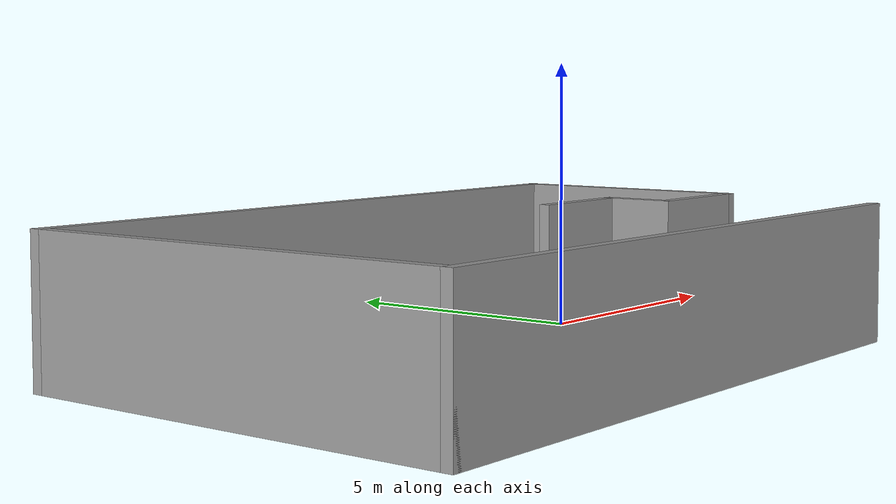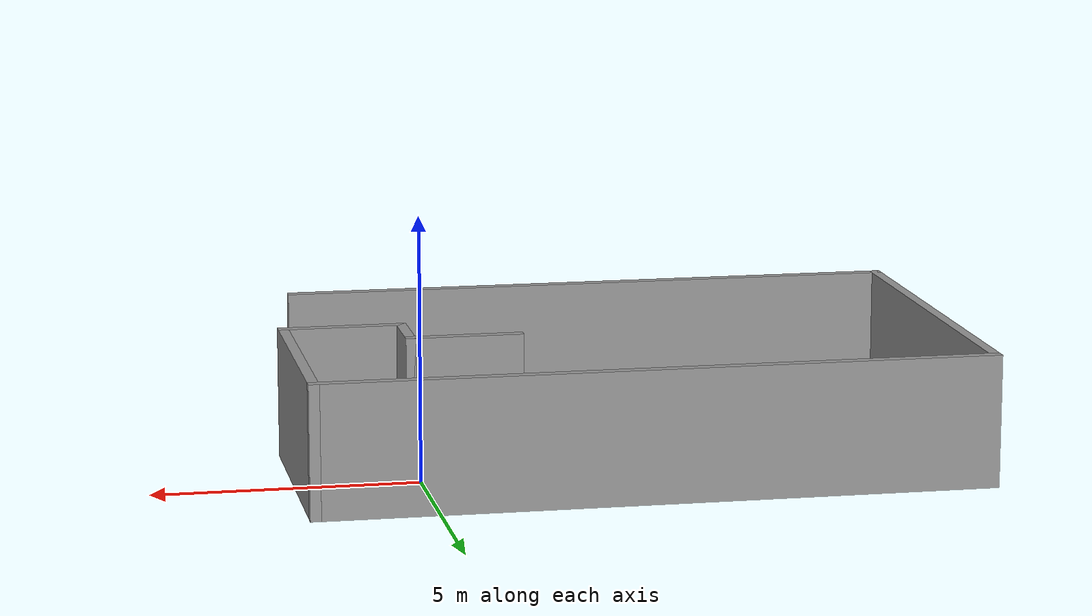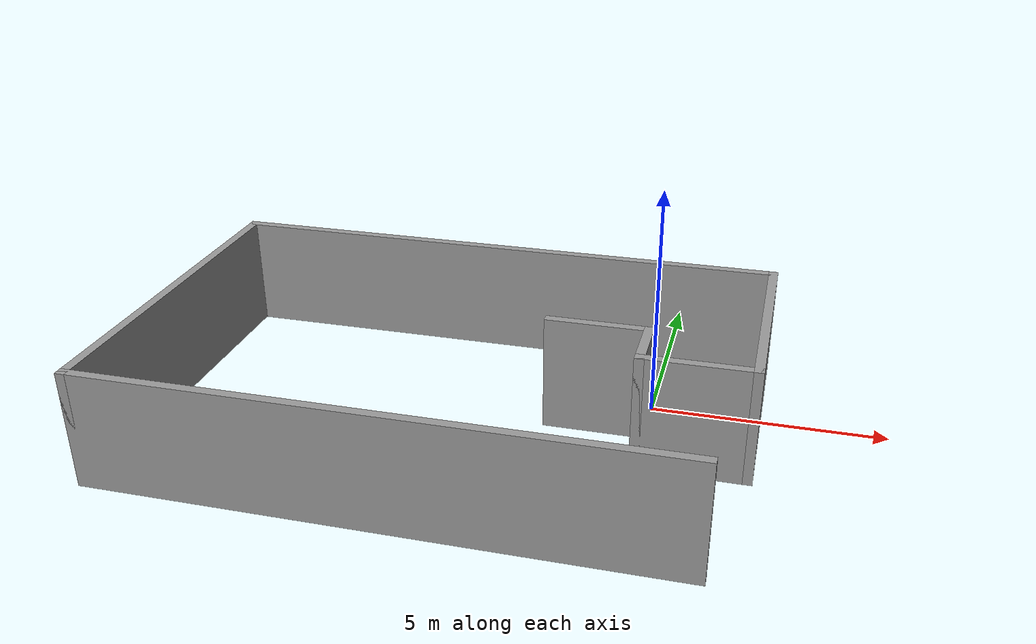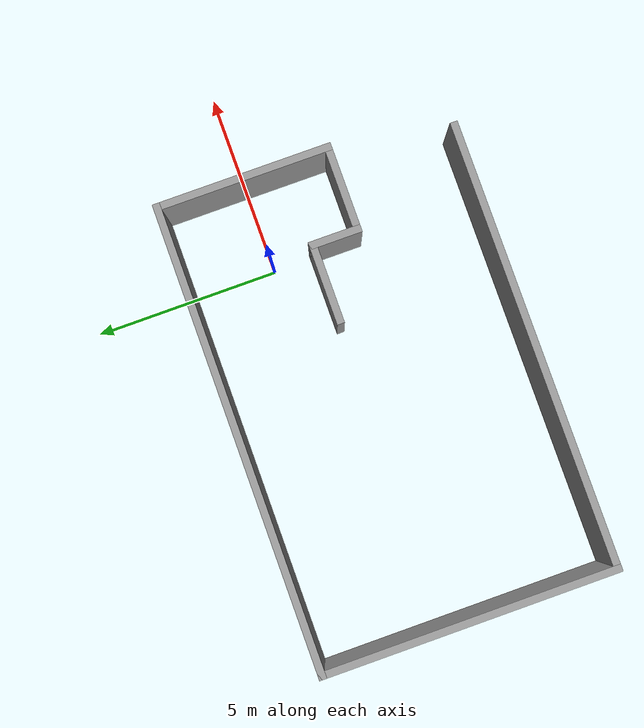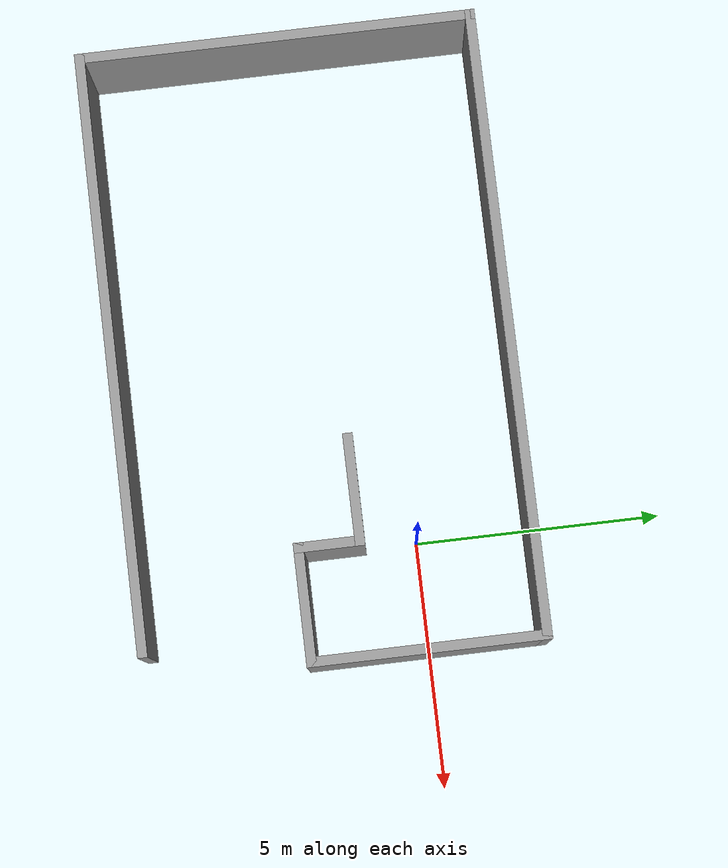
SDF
<sdf version='1.4'>
  <model name='editor'>
    <link name='Wall_0'>
      <collision name='Wall_0_Collision'>
        <geometry>
          <box>
            <size>2.240000 0.200000 2.500000</size>
          </box>
        </geometry>
        <pose>0.000000 0.000000 1.250000 0.000000 0.000000 0.000000</pose>
      </collision>
      <visual name='Wall_0_Visual'>
        <pose>0.000000 0.000000 1.250000 0.000000 0.000000 0.000000</pose>
        <geometry>
          <box>
            <size>2.240000 0.200000 2.500000</size>
          </box>
        </geometry>
        <material>
          <script>
            <uri>file://media/materials/scripts/gazebo.material</uri>
            <name>Gazebo/Grey</name>
          </script>
        </material>
      </visual>
      <velocity_decay>
        <linear>0.000000</linear>
        <angular>0.000000</angular>
      </velocity_decay>
      <pose>-1.020000 -1.130000 0.000000 0.000000 0.000000 0.000000</pose>
    </link>
    <link name='Wall_1'>
      <collision name='Wall_1_Collision'>
        <geometry>
          <box>
            <size>1.410000 0.200000 2.500000</size>
          </box>
        </geometry>
        <pose>0.000000 0.000000 1.250000 0.000000 0.000000 0.000000</pose>
      </collision>
      <visual name='Wall_1_Visual'>
        <pose>0.000000 0.000000 1.250000 0.000000 0.000000 0.000000</pose>
        <geometry>
          <box>
            <size>1.410000 0.200000 2.500000</size>
          </box>
        </geometry>
        <material>
          <script>
            <uri>file://media/materials/scripts/gazebo.material</uri>
            <name>Gazebo/Grey</name>
          </script>
        </material>
      </visual>
      <velocity_decay>
        <linear>0.000000</linear>
        <angular>0.000000</angular>
      </velocity_decay>
      <pose>0.000000 -1.735000 0.000000 0.000000 0.000000 -1.570800</pose>
    </link>
    <link name='Wall_2'>
      <collision name='Wall_2_Collision'>
        <geometry>
          <box>
            <size>2.450000 0.200000 2.500000</size>
          </box>
        </geometry>
        <pose>0.000000 0.000000 1.250000 0.000000 0.000000 0.000000</pose>
      </collision>
      <visual name='Wall_2_Visual'>
        <pose>0.000000 0.000000 1.250000 0.000000 0.000000 0.000000</pose>
        <geometry>
          <box>
            <size>2.450000 0.200000 2.500000</size>
          </box>
        </geometry>
        <material>
          <script>
            <uri>file://media/materials/scripts/gazebo.material</uri>
            <name>Gazebo/Grey</name>
          </script>
        </material>
      </visual>
      <velocity_decay>
        <linear>0.000000</linear>
        <angular>0.000000</angular>
      </velocity_decay>
      <pose>1.125000 -2.340000 0.000000 0.000000 0.000000 0.000000</pose>
    </link>
    <link name='Wall_3'>
      <collision name='Wall_3_Collision'>
        <geometry>
          <box>
            <size>4.832900 0.200000 2.500000</size>
          </box>
        </geometry>
        <pose>0.000000 0.000000 1.250000 0.000000 0.000000 0.000000</pose>
      </collision>
      <visual name='Wall_3_Visual'>
        <pose>0.000000 0.000000 1.250000 0.000000 0.000000 0.000000</pose>
        <geometry>
          <box>
            <size>4.832900 0.200000 2.500000</size>
          </box>
        </geometry>
        <material>
          <script>
            <uri>file://media/materials/scripts/gazebo.material</uri>
            <name>Gazebo/Grey</name>
          </script>
        </material>
      </visual>
      <velocity_decay>
        <linear>0.000000</linear>
        <angular>0.000000</angular>
      </velocity_decay>
      <pose>2.250000 -0.023552 0.000000 0.000000 0.000000 1.570800</pose>
    </link>
    <link name='Wall_4'>
      <collision name='Wall_4_Collision'>
        <geometry>
          <box>
            <size>12.742100 0.200000 2.500000</size>
          </box>
        </geometry>
        <pose>0.000000 0.000000 1.250000 0.000000 0.000000 0.000000</pose>
      </collision>
      <visual name='Wall_4_Visual'>
        <pose>0.000000 0.000000 1.250000 0.000000 0.000000 0.000000</pose>
        <geometry>
          <box>
            <size>12.742100 0.200000 2.500000</size>
          </box>
        </geometry>
        <material>
          <script>
            <uri>file://media/materials/scripts/gazebo.material</uri>
            <name>Gazebo/Grey</name>
          </script>
        </material>
      </visual>
      <velocity_decay>
        <linear>0.000000</linear>
        <angular>0.000000</angular>
      </velocity_decay>
      <pose>-4.021050 2.292900 0.000000 0.000000 0.000000 3.141590</pose>
    </link>
    <link name='Wall_5'>
      <collision name='Wall_5_Collision'>
        <geometry>
          <box>
            <size>8.088840 0.200000 2.500000</size>
          </box>
        </geometry>
        <pose>0.000000 0.000000 1.250000 0.000000 0.000000 0.000000</pose>
      </collision>
      <visual name='Wall_5_Visual'>
        <pose>0.000000 0.000000 1.250000 0.000000 0.000000 0.000000</pose>
        <geometry>
          <box>
            <size>8.088840 0.200000 2.500000</size>
          </box>
        </geometry>
        <material>
          <script>
            <uri>file://media/materials/scripts/gazebo.material</uri>
            <name>Gazebo/Grey</name>
          </script>
        </material>
      </visual>
      <velocity_decay>
        <linear>0.000000</linear>
        <angular>0.000000</angular>
      </velocity_decay>
      <pose>-10.292100 -1.651520 0.000000 0.000000 0.000000 -1.570800</pose>
    </link>
    <link name='Wall_6'>
      <collision name='Wall_6_Collision'>
        <geometry>
          <box>
            <size>12.174900 0.200000 2.500000</size>
          </box>
        </geometry>
        <pose>0.000000 0.000000 1.250000 0.000000 0.000000 0.000000</pose>
      </collision>
      <visual name='Wall_6_Visual'>
        <pose>0.000000 0.000000 1.250000 0.000000 0.000000 0.000000</pose>
        <geometry>
          <box>
            <size>12.174900 0.200000 2.500000</size>
          </box>
        </geometry>
        <material>
          <script>
            <uri>file://media/materials/scripts/gazebo.material</uri>
            <name>Gazebo/Grey</name>
          </script>
        </material>
      </visual>
      <velocity_decay>
        <linear>0.000000</linear>
        <angular>0.000000</angular>
      </velocity_decay>
      <pose>-4.304670 -5.595940 0.000000 0.000000 0.000000 0.000000</pose>
    </link>
    <static>1</static>
  </model>
</sdf>
